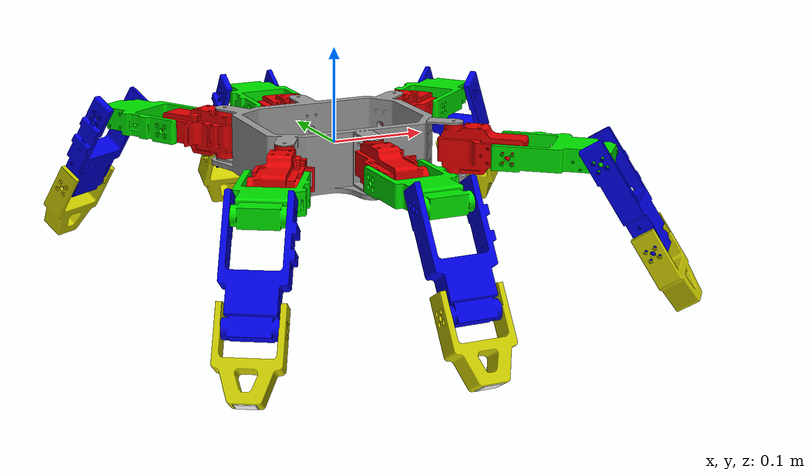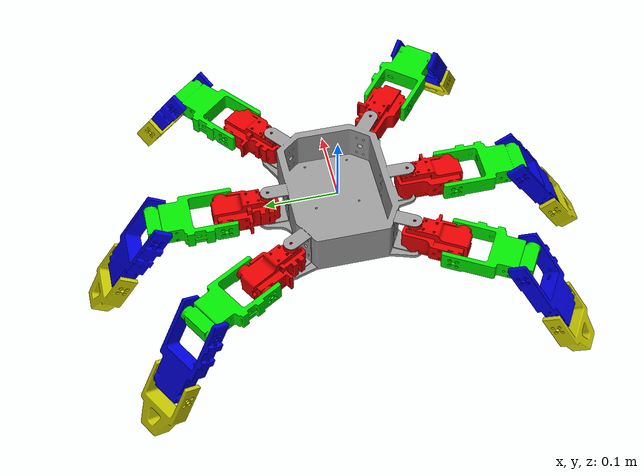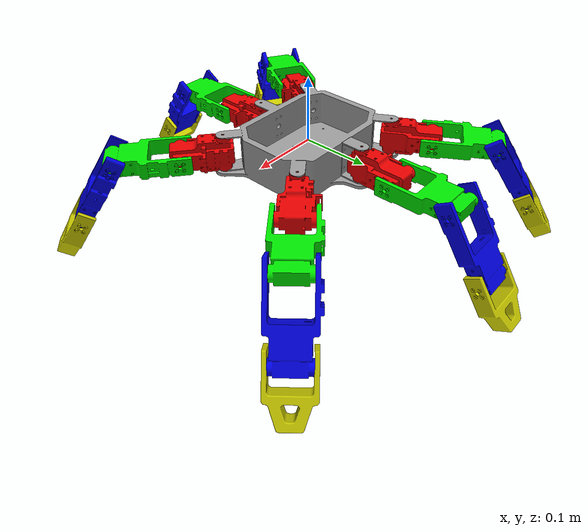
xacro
<?xml version="1.0" ?>
<robot xmlns:xacro="http://www.ros.org/wiki/xacro" name="hexapod">
	<xacro:property name="pi" value="3.1415926535897931" />
	<link name="base_link">
		<visual>
			<origin rpy="${0.5 * pi} 0 0" />
			<geometry>
				<mesh filename="package://hexapod_model/meshes/body_bin.stl" />
			</geometry>
			<material name="abs">
				<color rgba="0.6 0.6 0.6 1" />
			</material>
		</visual>
		<collision>
			<origin rpy="${0.5 * pi} 0 0" />
			<geometry>
				<box size="0.19 0.05 0.14" />
			</geometry>
		</collision>
	</link>
	<xacro:macro name="leg" params="side num *origin">
		<link name="leg_${side}_${num}_f1">
			<visual>
				<origin rpy="0 ${0.5 * pi} -${0.5 * pi}" xyz="-0.009 0 0" />
				<geometry>
					<mesh filename="package://hexapod_model/meshes/femur_1_bin.stl" />
				</geometry>
				<material name="abs1">
					<color rgba="0.9 0.0 0.0 1" />
				</material>
			</visual>
			<collision>
				<origin rpy="0 ${0.5 * pi} -${0.5 * pi}" xyz="0.04 0 0" />
				<geometry>
					<box size="0.05 0.07 0.05" />
				</geometry>
			</collision>
		</link>
		<link name="leg_${side}_${num}_f2">
			<visual>
				<origin rpy="${1.5 * pi} 0 ${0.5 * pi}" xyz="0 -0.053 0.013" />
				<geometry>
					<mesh filename="package://hexapod_model/meshes/femur_3_bin.stl" />
				</geometry>
				<material name="abs2">
					<color rgba="0.0 0.9 0.0 1" />
				</material>
			</visual>
			<collision>
				<origin rpy="${1.5 * pi} 0 ${0.5 * pi}" xyz="0 -0.043 0" />
				<geometry>
					<box size="0.11 0.03 0.06" />
				</geometry>
			</collision>
		</link>
		<link name="leg_${side}_${num}_f3">
			<visual>
				<origin rpy="${1.5 * pi} 0 0" xyz="-0.063 0 0.013" />
				<geometry>
					<mesh filename="package://hexapod_model/meshes/femur_2_bin.stl" />
				</geometry>
				<material name="abs3">
					<color rgba="0.0 0.0 0.9 1" />
				</material>
			</visual>
			<collision>
				<origin rpy="${1.5 * pi} 0 0" xyz="-0.043 0 0" />
				<geometry>
					<box size="0.12 0.03 0.06" />
				</geometry>
			</collision>
		</link>
		<link name="leg_${side}_${num}_f4">
			<visual>
				<origin rpy="${0.5 * pi} 0 ${1.5 * pi}" xyz="0 0.038 -0.013" />
				<geometry>
					<mesh filename="package://hexapod_model/meshes/femur_4_bin.stl" />
				</geometry>
				<material name="abs4">
					<color rgba="0.8 0.8 0.0 1" />
				</material>
			</visual>
			<collision>
				<origin rpy="${0.5 * pi} 0 ${1.5 * pi}" xyz="0 0.028 0" />
				<geometry>
					<box size="0.08 0.03 0.06" />
				</geometry>
			</collision>
		</link>
		<link name="leg_${side}_${num}_end">
			<visual>
				<geometry>
					<box size="0.02 0.005 0.02 " />
				</geometry>
				<material name="abs_end">
					<color rgba="1 1 1 1" />
				</material>
			</visual>
			<collision>
				<geometry>
					<box size="0.02 0.005 0.02 " />
				</geometry>
			</collision>
		</link>
		<joint name="joint_${side}_${num}_f1" type="revolute">
			<parent link="base_link" />
			<child link="leg_${side}_${num}_f1" />
			<xacro:insert_block name="origin" />
			<axis xyz="0 0 1" />
			<limit lower="-${0.5 * pi}" upper="${0.5 * pi}" effort="15"
				velocity="1.0" />
		</joint>
		<joint name="joint_${side}_${num}_f2" type="revolute">
			<parent link="leg_${side}_${num}_f1" />
			<child link="leg_${side}_${num}_f2" />
			<origin xyz="0.062 0.0 0.0" rpy="0 0 ${0.5 * pi}" />
			<axis xyz="1 0 0" />
			<limit lower="-${0.5 * pi}" upper="${0.5 * pi}" effort="15"
				velocity="1.0" />
		</joint>
		<joint name="joint_${side}_${num}_f3" type="revolute">
			<parent link="leg_${side}_${num}_f2" />
			<child link="leg_${side}_${num}_f3" />
			<origin xyz="0.0 -0.094 0.0" rpy="0 -${0.32 * pi} ${0.5 * pi}" />
			<axis xyz="0 1 0" />
			<limit lower="-${0.5 * pi}" upper="${0.5 * pi}" effort="15"
				velocity="1.0" />
		</joint>
		<joint name="joint_${side}_${num}_f4" type="revolute">
			<parent link="leg_${side}_${num}_f3" />
			<child link="leg_${side}_${num}_f4" />
			<origin xyz="-0.104 0.0 0.0" rpy="-0 0 ${0.5 * pi}" />
			<axis xyz="1 0 0" />
			<limit lower="-${0.5 * pi}" upper="${0.5 * pi}" effort="15"
				velocity="1.0" />
		</joint>
		<joint name="joint_${side}_${num}_end" type="fixed">
			<parent link="leg_${side}_${num}_f4" />
			<child link="leg_${side}_${num}_end" />
			<origin xyz="0 0.067 0.0" rpy="0 0 0" />
		</joint>
	</xacro:macro>
	<xacro:leg side="l" num="1">
		<origin xyz="0.103 0.07 0" rpy="0 0 ${0.22 * pi}" />
	</xacro:leg>
	<xacro:leg side="l" num="2">
		<origin xyz="0.0 0.096 0" rpy="0 0 ${0.5 * pi}" />
	</xacro:leg>
	<xacro:leg side="l" num="3">
		<origin xyz="-0.09 0.083 0" rpy="0 0 ${0.67 * pi}" />
	</xacro:leg>
	<xacro:leg side="r" num="1">
		<origin xyz="0.103 -0.07 0" rpy="0 0 -${0.22 * pi}" />
	</xacro:leg>
	<xacro:leg side="r" num="2">
		<origin xyz="0.0 -0.096 0" rpy="0 0 -${0.5 * pi}" />
	</xacro:leg>
	<xacro:leg side="r" num="3">
		<origin xyz="-0.09 -0.083 0" rpy="0 0 -${0.67 * pi}" />
	</xacro:leg>
</robot>
